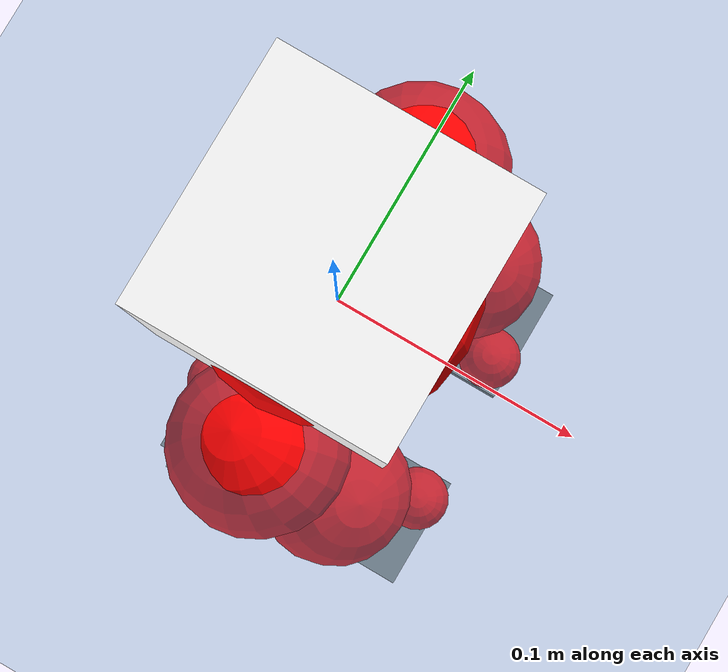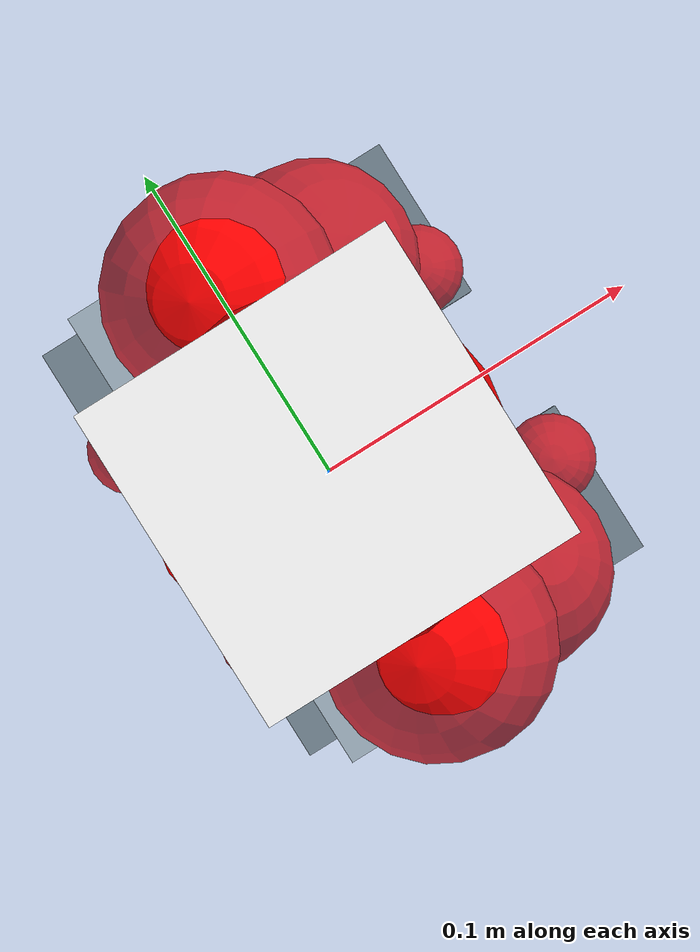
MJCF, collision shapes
<mujoco model="pi_12dof_release_v1">
  <compiler angle="radian" assetdir="assets" balanceinertia="true" inertiafromgeom="false"/>

  <option timestep="0.005" density="1.2" viscosity="2e-05"/>

  <size nkey="1"/>

  <visual>
    <quality shadowsize="8192"/>
    <map shadowclip="0.5"/>
  </visual>

  <default>
    <default class="/">
      <joint armature="0.01" damping="0.01" frictionloss="0.01"/>
      <geom contype="0" conaffinity="0" group="1" solref="-1000 -80"/>
      <site size="0.01 0.005 0.005" group="5"/>
      <general forcelimited="true" biastype="affine" gainprm="20" biasprm="0 -20 -0.5"/>
      <default class="foot">
        <geom size="0.0845 0.036 0.005" type="box" condim="6" group="4" priority="1" friction="0.9 0.2 0.2" solimp="0.015 1 0.005"/>
      </default>
      <default class="reward_collision_sphere">
        <geom group="5" rgba="1 0 0 1"/>
      </default>
    </default>
  </default>

  <asset>
    <texture type="skybox" colorspace="auto" name="//unnamed_texture_0" builtin="gradient" rgb1="0.95 0.95 0.95" rgb2="0.95 0.95 0.95" width="100" height="600"/>
    <texture type="2d" colorspace="auto" name="texplane" builtin="checker" rgb1="0.345 0.575 0.748" rgb2="0.345 0.575 0.748" markrgb="1 1 1" width="512" height="512"/>
    <material name="MatPlane" class="/" texture="texplane" texuniform="true" texrepeat="2 2" specular="0.9"/>
    <mesh name="baselink_1" class="/" file="baselink_1.STL"/>
    <mesh name="r_hip_pitch_link" class="/" file="r_hip_pitch_link.STL"/>
    <mesh name="r_hip_roll_link" class="/" file="r_hip_roll_link.STL"/>
    <mesh name="r_thigh_link" class="/" file="r_thigh_link.STL"/>
    <mesh name="r_calf_link" class="/" file="r_calf_link.STL"/>
    <mesh name="r_ankle_pitch_link" class="/" file="r_ankle_pitch_link.STL"/>
    <mesh name="r_ankle_roll_link" class="/" file="r_ankle_roll_link.STL"/>
    <mesh name="l_hip_pitch_link" class="/" file="l_hip_pitch_link.STL"/>
    <mesh name="l_hip_roll_link" class="/" file="l_hip_roll_link.STL"/>
    <mesh name="l_thigh_link" class="/" file="l_thigh_link.STL"/>
    <mesh name="l_calf_link" class="/" file="l_calf_link.STL"/>
    <mesh name="l_ankle_pitch_link" class="/" file="l_ankle_pitch_link.STL"/>
    <mesh name="l_ankle_roll_link" class="/" file="l_ankle_roll_link.STL"/>
  </asset>

  <worldbody>
    <geom name="floor" class="/" size="100 100 0.125" type="plane" group="0" material="MatPlane"/>
    <light name="toplight_shadow" class="/" pos="0 0 5" dir="0.0990148 0.0990148 -0.990148" type="directional" ambient="0.04 0.04 0.04" diffuse="0.55 0.55 0.55" specular="0.12 0.12 0.12"/>
    <light name="toplight_fill" class="/" pos="0 0 5" dir="0.0990148 0.0990148 -0.990148" type="directional" castshadow="false" ambient="0.04 0.04 0.04" diffuse="0.3 0.3 0.3" specular="0.08 0.08 0.08"/>
    <body name="trunk" pos="-2.52452e-05 -4.16853e-05 0.000628851" quat="1 -6.46842e-05 -9.88448e-05 -1.15701e-05">
      <inertial pos="0.00213754 -7.77177e-05 0.0380442" quat="0.695374 0.00963856 0.00964612 0.718519" mass="1.66001" diaginertia="0.00938944 0.00290833 0.00322042"/>
      <joint name="//unnamed_joint_0" type="free"/>
      <geom name="//unnamed_geom_1" class="/" type="mesh" density="0" rgba="1 1 1 1" mesh="baselink_1"/>
      <geom name="//unnamed_geom_2" class="/" size="0.045536 0.045536 0.045536" pos="0 0 0.0757766" type="box" rgba="1 1 1 1"/>
      <geom name="//unnamed_geom_3" class="reward_collision_sphere" size="0.0500897" pos="0 0 0.0663045"/>
      <site name="imu" class="/" pos="-0.00160105 0.00473635 -0.00240701" size="0.00910721"/>
      <camera name="track" class="/" pos="0 -1.59197 0" quat="0.707107 0.707107 0 0" mode="trackcom"/>
      <camera name="ego_camera" class="/" pos="0.0741727 0 0.170497" quat="-0.5 -0.5 0.5 0.5"/>
      <body name="r_hip_pitch_link" pos="-0.000317717 -0.0169313 -0.0310453" quat="0.992198 6.65186e-08 -0.124675 2.39609e-06">
        <inertial pos="0.000979605 -0.0450654 0.000955277" quat="-0.0184478 0.707258 -0.0271501 0.706193" mass="0.27869" diaginertia="0.000102759 3.16938e-05 6.25749e-05"/>
        <joint name="r_hip_pitch_joint" class="/" pos="0 0 0" axis="0.000228091 -0.999959 -0.00908144" range="-1.75473 1.26509" armature="0.0095323" damping="0.0151804" frictionloss="0.00931035"/>
        <geom name="//unnamed_geom_4" class="/" type="mesh" density="0" rgba="0.75294 0.75294 0.75294 1" mesh="r_hip_pitch_link"/>
        <geom name="//unnamed_geom_5" class="/" size="0.00045536 0.00045536 0.00045536" type="box" rgba="0.75294 0.75294 0.75294 1"/>
        <body name="r_hip_roll_link" pos="0.000443573 -0.0442094 -0.000778528" quat="1 -8.92595e-05 3.88864e-05 1.65623e-05">
          <inertial pos="-0.00114629 0.000101608 -0.0573973" quat="0.706529 -0.0803636 -0.0823203 0.698271" mass="0.293141" diaginertia="0.000317608 8.81316e-05 9.61111e-05"/>
          <joint name="r_hip_roll_joint" class="/" pos="0 0 0" axis="-0.999999 0.000454206 0.00100851" range="-0.118874 0.496638" armature="0.00887467" damping="0.0028338" frictionloss="0.00867724"/>
          <geom name="//unnamed_geom_6" class="/" type="mesh" density="0" rgba="0.75294 0.75294 0.75294 1" mesh="r_hip_roll_link"/>
          <geom name="//unnamed_geom_7" class="/" size="0.00045536 0.00045536 0.00045536" type="box" rgba="0.75294 0.75294 0.75294 1"/>
          <geom name="//unnamed_geom_8" class="reward_collision_sphere" size="0.0364288"/>
          <body name="r_thigh_link" pos="0.00042766 0.000225526 -0.0653515" quat="1 0.000190886 -0.000168867 3.98437e-05">
            <inertial pos="0.000204878 0.000950102 -0.0448481" quat="0.737438 0.675415 2.88109e-05 -8.39628e-05" mass="0.0861114" diaginertia="0.000118353 3.01092e-05 4.43141e-05"/>
            <joint name="r_thigh_joint" class="/" pos="0 0 0" axis="-0.000227269 -0.00183665 -0.999998" range="-0.302213 0.603553" armature="0.00908366" damping="0.00300989" frictionloss="0.0091599"/>
            <geom name="//unnamed_geom_9" class="/" type="mesh" density="0" rgba="0.75294 0.75294 0.75294 1" mesh="r_thigh_link"/>
            <geom name="//unnamed_geom_10" class="/" size="0.00045536 0.00045536 0.00045536" type="box" rgba="0.75294 0.75294 0.75294 1"/>
            <body name="r_calf_link" pos="-0.00083045 -0.000817452 -0.0659958" quat="0.94765 -1.37452e-05 0.319311 -3.56096e-06">
              <inertial pos="1.57089e-05 -0.000333834 -0.066686" quat="0.999982 -0.00321221 -0.00057871 0.00504748" mass="0.611016" diaginertia="0.00332228 0.00112495 0.000133168"/>
              <joint name="r_calf_joint" class="/" pos="0 0 0" axis="0.00272511 -0.999995 -0.00141426" range="-1.63618 0.645904" armature="0.00913664" damping="0.00847359" frictionloss="0.00907889"/>
              <geom name="//unnamed_geom_11" class="/" type="mesh" density="0" rgba="0.75294 0.75294 0.75294 1" mesh="r_calf_link"/>
              <geom name="//unnamed_geom_12" class="/" size="0.00045536 0.00045536 0.00045536" type="box" rgba="0.75294 0.75294 0.75294 1"/>
              <geom name="//unnamed_geom_13" class="reward_collision_sphere" size="0.0364288"/>
              <body name="r_ankle_pitch_link" pos="0.00189961 -0.000266546 -0.132733" quat="0.980088 -3.55565e-05 -0.198564 -4.75101e-05">
                <inertial pos="0.00492822 0.00235482 -0.000310679" quat="0.00210277 0.707308 -0.00233588 0.706898" mass="0.13653" diaginertia="0.00029337 7.26683e-05 9.33886e-05"/>
                <joint name="r_ankle_pitch_joint" class="/" pos="0 0 0" axis="-0.00478703 -0.999989 0.000195038" range="-1.28206 0.485041" armature="0.00914348" damping="0.0115832" frictionloss="0.00913986"/>
                <geom name="//unnamed_geom_14" class="/" type="mesh" density="0" rgba="0.75294 0.75294 0.75294 1" mesh="r_ankle_pitch_link"/>
                <geom name="//unnamed_geom_15" class="/" size="0.0355181 0.0364288 0.022768" type="box" rgba="0.75294 0.75294 0.75294 1"/>
                <body name="r_ankle_roll_link" pos="0.0768707 0.00228815 -0.000734015" quat="1 8.9524e-06 -0.000152068 -0.000116707">
                  <inertial pos="-0.0230271 -0.000309295 -0.01274" quat="0.559925 0.430661 0.434272 0.558948" mass="0.384648" diaginertia="0.00105828 0.00033023 0.000216357"/>
                  <joint name="r_ankle_roll_joint" class="/" pos="0 0 0" axis="-1 0.000138389 -0.000168511" stiffness="0.000855692" range="-0.146166 0.141645" armature="0.00912853" damping="0.00572293" frictionloss="0.00967178"/>
                  <geom name="//unnamed_geom_16" class="/" type="mesh" density="0" rgba="0.75294 0.75294 0.75294 1" mesh="r_ankle_roll_link"/>
                  <geom name="//unnamed_geom_17" class="/" type="mesh" rgba="0.75294 0.75294 0.75294 1" mesh="r_ankle_roll_link"/>
                  <geom name="right_foot" class="foot" size="0.0779579 0.0329805 0.0043811" pos="-0.0504374 0 -0.0416771"/>
                  <geom name="//unnamed_geom_19" class="reward_collision_sphere" size="0.0364288" pos="-0.0494485 0 -0.0189441"/>
                  <geom name="//unnamed_geom_20" class="reward_collision_sphere" size="0.0182144" pos="0.0148345 0.0159197 -0.0378883"/>
                  <geom name="//unnamed_geom_21" class="reward_collision_sphere" size="0.0182144" pos="-0.118676 0.0159197 -0.0378883"/>
                  <site name="right_foot" class="foot" pos="-0.0504374 0 -0.0416771" size="0.00910721"/>
                </body>
              </body>
            </body>
          </body>
        </body>
      </body>
      <body name="l_hip_pitch_link" pos="0.000334117 0.0181373 -0.0310974" quat="0.992188 -0.000140665 -0.124753 0.000102099">
        <inertial pos="0.00176168 0.0425865 0.000351514" quat="-0.0333903 0.706501 0.0351214 0.706051" mass="0.2891" diaginertia="0.000121018 3.32525e-05 7.75625e-05"/>
        <joint name="l_hip_pitch_joint" class="/" pos="0 0 0" axis="-0.00189984 0.999998 -0.000580881" range="-1.25078 1.74234" armature="0.00870485" damping="0.00661101" frictionloss="0.00911337"/>
        <geom name="//unnamed_geom_22" class="/" type="mesh" density="0" rgba="0.75294 0.75294 0.75294 1" mesh="l_hip_pitch_link"/>
        <geom name="//unnamed_geom_23" class="/" size="0.00045536 0.00045536 0.00045536" type="box" rgba="0.75294 0.75294 0.75294 1"/>
        <body name="l_hip_roll_link" pos="0.000221813 0.044198 8.05105e-05" quat="1 0.000127364 -0.000292938 0.000272835">
          <inertial pos="-0.00183933 0.000608933 -0.0583448" quat="0.70003 -0.0754293 -0.0804336 0.705549" mass="0.296591" diaginertia="0.000315898 9.0526e-05 9.77251e-05"/>
          <joint name="l_hip_roll_joint" class="/" pos="0 0 0" axis="-0.999991 -0.00274088 0.00322641" range="-0.473524 0.100769" armature="0.00927881" damping="0.00428522" frictionloss="0.00914267"/>
          <geom name="//unnamed_geom_24" class="/" type="mesh" density="0" rgba="0.75294 0.75294 0.75294 1" mesh="l_hip_roll_link"/>
          <geom name="//unnamed_geom_25" class="/" size="0.00045536 0.00045536 0.00045536" type="box" rgba="0.75294 0.75294 0.75294 1"/>
          <geom name="//unnamed_geom_26" class="reward_collision_sphere" size="0.0364288"/>
          <body name="l_thigh_link" pos="-0.000810244 8.85652e-05 -0.0656076" quat="1 9.52948e-06 5.67908e-06 -3.73986e-06">
            <inertial pos="0.00030816 -0.00113952 -0.0446711" quat="0.675538 0.737325 1.45353e-05 -8.41931e-05" mass="0.0864284" diaginertia="0.000120685 3.10399e-05 4.58737e-05"/>
            <joint name="l_thigh_joint" class="/" pos="0 0 0" axis="-0.000453227 -0.00115049 -0.999999" range="-0.596669 0.29455" armature="0.00930962" damping="0.00202241" frictionloss="0.00938916"/>
            <geom name="//unnamed_geom_27" class="/" type="mesh" density="0" rgba="0.75294 0.75294 0.75294 1" mesh="l_thigh_link"/>
            <geom name="//unnamed_geom_28" class="/" size="0.00045536 0.00045536 0.00045536" type="box" rgba="0.75294 0.75294 0.75294 1"/>
            <body name="l_calf_link" pos="-0.000626016 -0.000268982 -0.066803" quat="0.947655 -8.36901e-05 0.319295 4.62483e-05">
              <inertial pos="0.000803371 0.00149829 -0.0655123" quat="0.999935 0.00946415 0.000921936 0.00628671" mass="0.619688" diaginertia="0.0033278 0.00114231 0.000134242"/>
              <joint name="l_calf_joint" class="/" pos="0 0 0" axis="0.000694232 0.999999 0.00143146" range="-0.642329 1.67037" armature="0.00907794" damping="0.00867122" frictionloss="0.00949481"/>
              <geom name="//unnamed_geom_29" class="/" type="mesh" density="0" rgba="0.75294 0.75294 0.75294 1" mesh="l_calf_link"/>
              <geom name="//unnamed_geom_30" class="/" size="0.00045536 0.00045536 0.00045536" type="box" rgba="0.75294 0.75294 0.75294 1"/>
              <geom name="//unnamed_geom_31" class="reward_collision_sphere" size="0.0364288"/>
              <body name="l_ankle_pitch_link" pos="0.000727557 0.00132267 -0.134174" quat="0.980102 -0.000130743 -0.198493 -0.000105661">
                <inertial pos="0.00494832 0.000694916 -0.00102344" quat="-0.0021705 0.706193 0.00278934 0.70801" mass="0.130798" diaginertia="0.000286975 6.96953e-05 8.96955e-05"/>
                <joint name="l_ankle_pitch_joint" class="/" pos="0 0 0" axis="-0.00348752 0.999992 0.00191044" stiffness="0.000648036" range="-0.50081 1.30481" armature="0.00911186" damping="0.00174175" frictionloss="0.00893496"/>
                <geom name="//unnamed_geom_32" class="/" type="mesh" density="0" rgba="0.75294 0.75294 0.75294 1" mesh="l_ankle_pitch_link"/>
                <geom name="//unnamed_geom_33" class="/" size="0.0355181 0.0364288 0.022768" type="box" rgba="0.75294 0.75294 0.75294 1"/>
                <body name="l_ankle_roll_link" pos="0.0741931 0.000270283 -0.000143364" quat="1 -0.000135188 8.27304e-05 -0.00012368">
                  <inertial pos="-0.0245041 -5.53695e-05 -0.0135919" quat="0.558499 0.435045 0.433466 0.557604" mass="0.393795" diaginertia="0.00108977 0.000333589 0.000222373"/>
                  <joint name="l_ankle_roll_joint" class="/" pos="0 0 0" axis="-0.999971 -0.000842894 -0.00755182" range="-0.150847 0.122428" armature="0.00911783" damping="0.00972217" frictionloss="0.00849261"/>
                  <geom name="//unnamed_geom_34" class="/" type="mesh" density="0" rgba="0.75294 0.75294 0.75294 1" mesh="l_ankle_roll_link"/>
                  <geom name="//unnamed_geom_35" class="/" type="mesh" rgba="0.75294 0.75294 0.75294 1" mesh="l_ankle_roll_link"/>
                  <geom name="left_foot" class="foot" size="0.0789118 0.0343998 0.00447956" pos="-0.0504374 0 -0.0416771"/>
                  <geom name="//unnamed_geom_37" class="reward_collision_sphere" size="0.0364288" pos="-0.0494485 0 -0.0189441"/>
                  <geom name="//unnamed_geom_38" class="reward_collision_sphere" size="0.0182144" pos="0.0148345 -0.0159197 -0.0378883"/>
                  <geom name="//unnamed_geom_39" class="reward_collision_sphere" size="0.0182144" pos="-0.118676 -0.0159197 -0.0378883"/>
                  <site name="left_foot" class="foot" pos="-0.0504374 0 -0.0416771" size="0.00910721"/>
                </body>
              </body>
            </body>
          </body>
        </body>
      </body>
    </body>
  </worldbody>

  <contact>
    <pair class="/" geom1="floor" geom2="right_foot" name="//unnamed_contact_1"/>
    <pair class="/" geom1="floor" geom2="left_foot" name="//unnamed_contact_0"/>
  </contact>

  <actuator>
    <general name="r_hip_pitch_joint" class="/" joint="r_hip_pitch_joint" forcerange="-19.6074 19.6074" gainprm="18.5509" biasprm="0 -18.5509 -0.452024"/>
    <general name="r_hip_roll_joint" class="/" joint="r_hip_roll_joint" forcerange="-19.1878 19.1878" gainprm="18.5509" biasprm="0 -18.5509 -0.452024"/>
    <general name="r_thigh_joint" class="/" joint="r_thigh_joint" forcerange="-19.8039 19.8039" gainprm="18.5509" biasprm="0 -18.5509 -0.452024"/>
    <general name="r_calf_joint" class="/" joint="r_calf_joint" forcerange="-18.9319 18.9319" gainprm="18.5509" biasprm="0 -18.5509 -0.452024"/>
    <general name="r_ankle_pitch_joint" class="/" joint="r_ankle_pitch_joint" forcerange="-18.4833 18.4833" gainprm="18.5509" biasprm="0 -18.5509 -0.452024"/>
    <general name="r_ankle_roll_joint" class="/" joint="r_ankle_roll_joint" forcerange="-19.4481 19.4481" gainprm="18.5509" biasprm="0 -18.5509 -0.452024"/>
    <general name="l_hip_pitch_joint" class="/" joint="l_hip_pitch_joint" forcerange="-19.8221 19.8221" gainprm="18.5509" biasprm="0 -18.5509 -0.452024"/>
    <general name="l_hip_roll_joint" class="/" joint="l_hip_roll_joint" forcerange="-18.2089 18.2089" gainprm="18.5509" biasprm="0 -18.5509 -0.452024"/>
    <general name="l_thigh_joint" class="/" joint="l_thigh_joint" forcerange="-19.2907 19.2907" gainprm="18.5509" biasprm="0 -18.5509 -0.452024"/>
    <general name="l_calf_joint" class="/" joint="l_calf_joint" forcerange="-19.128 19.128" gainprm="18.5509" biasprm="0 -18.5509 -0.452024"/>
    <general name="l_ankle_pitch_joint" class="/" joint="l_ankle_pitch_joint" forcerange="-18.9213 18.9213" gainprm="18.5509" biasprm="0 -18.5509 -0.452024"/>
    <general name="l_ankle_roll_joint" class="/" joint="l_ankle_roll_joint" forcerange="-19.7239 19.7239" gainprm="18.5509" biasprm="0 -18.5509 -0.452024"/>
  </actuator>

  <sensor>
    <gyro site="imu" name="imu_angular_velocity"/>
    <velocimeter site="imu" name="imu_linear_velocity"/>
    <framelinvel objtype="site" objname="left_foot" name="left_foot_global_linear_velocity"/>
    <framelinvel objtype="site" objname="right_foot" name="right_foot_global_linear_velocity"/>
  </sensor>

  <keyframe>
    <key name="home" qpos="0 0 0.291 1 0 0 0 0.4 0 0 -0.8 0.4 0 -0.4 0 0 0.8 -0.4 0"/>
  </keyframe>
</mujoco>
